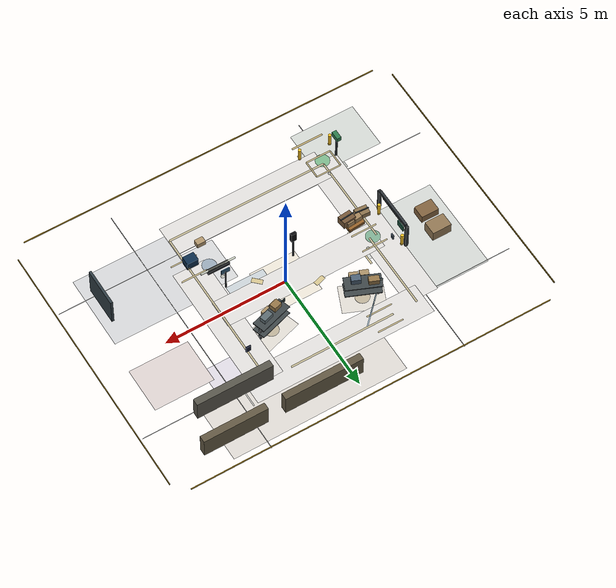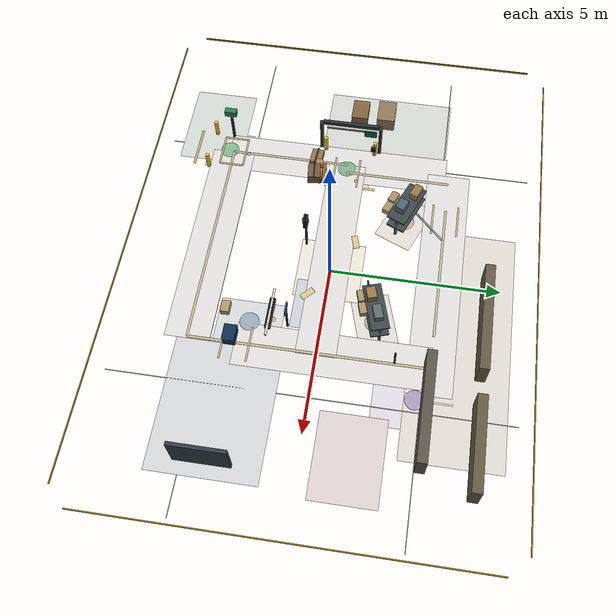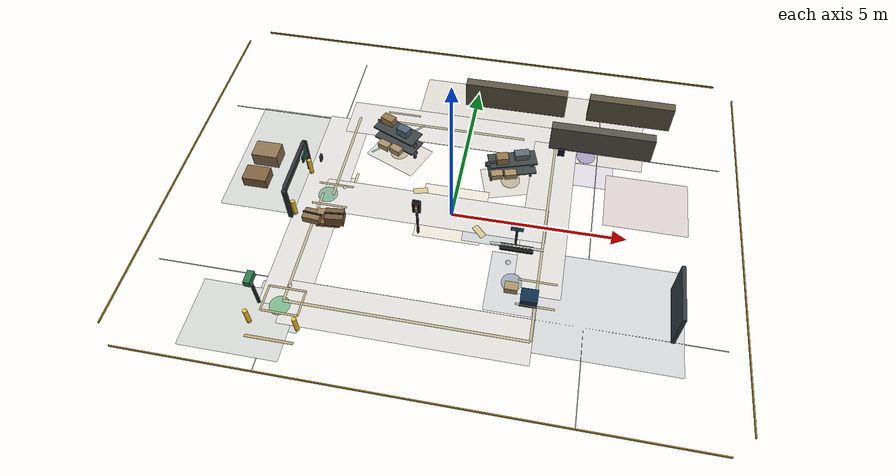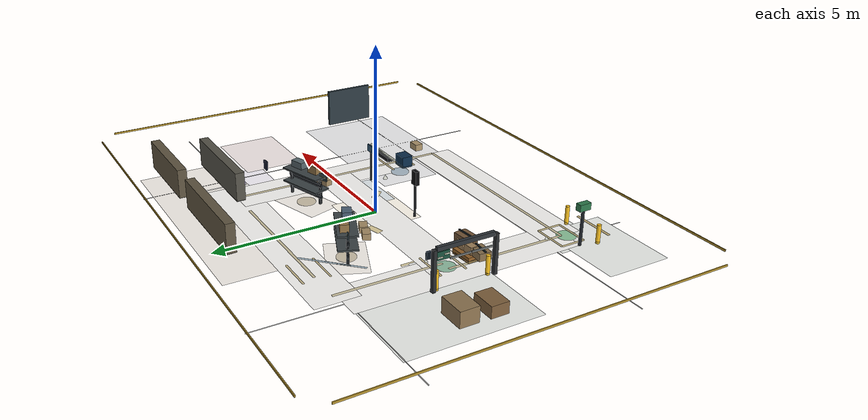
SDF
<sdf version="1.9">
 <world name="factory_patrol">
  <model name="showcase_large_factory_layout">
   <static>true</static>
   <pose>0 0 0.052 0 0 0</pose>
   <link name="link">
    <visual name="receiving_area_large">
     <pose>-5.35 1.10 0 0 0 0</pose>
     <geometry><box><size>2.70 3.90 0.012</size></box></geometry>
     <material><diffuse>0.25 0.34 0.30 0.16</diffuse><ambient>0.25 0.34 0.30 0.16</ambient></material>
    </visual>
    <visual name="storage_area_large">
     <pose>1.80 3.95 0.002 0 0 0</pose>
     <geometry><box><size>7.10 2.80 0.012</size></box></geometry>
     <material><diffuse>0.45 0.40 0.30 0.15</diffuse><ambient>0.45 0.40 0.30 0.15</ambient></material>
    </visual>
    <visual name="packing_area_large">
     <pose>4.65 -2.40 0.004 0 0 0</pose>
     <geometry><box><size>3.80 3.05 0.012</size></box></geometry>
     <material><diffuse>0.27 0.33 0.39 0.16</diffuse><ambient>0.27 0.33 0.39 0.16</ambient></material>
    </visual>
    <visual name="dock_area_large">
     <pose>-4.80 -4.35 0.006 0 0 0</pose>
     <geometry><box><size>2.70 1.95 0.012</size></box></geometry>
     <material><diffuse>0.25 0.36 0.30 0.18</diffuse><ambient>0.25 0.36 0.30 0.18</ambient></material>
    </visual>
    <visual name="restricted_service_area_large">
     <pose>5.50 1.30 0.008 0 0 0</pose>
     <geometry><box><size>2.40 1.85 0.012</size></box></geometry>
     <material><diffuse>0.42 0.25 0.25 0.13</diffuse><ambient>0.42 0.25 0.25 0.13</ambient></material>
    </visual>
    <visual name="aisle_left_band">
     <pose>-3.85 -0.35 0.010 0 0 1.5708</pose>
     <geometry><box><size>6.90 1.30 0.010</size></box></geometry>
     <material><diffuse>0.50 0.51 0.48 0.13</diffuse><ambient>0.50 0.51 0.48 0.13</ambient></material>
    </visual>
    <visual name="aisle_back_band">
     <pose>-0.20 3.20 0.012 0 0 0</pose>
     <geometry><box><size>7.35 1.30 0.010</size></box></geometry>
     <material><diffuse>0.50 0.51 0.48 0.13</diffuse><ambient>0.50 0.51 0.48 0.13</ambient></material>
    </visual>
    <visual name="aisle_right_drop_band">
     <pose>2.70 0.45 0.014 0 0 1.5708</pose>
     <geometry><box><size>5.50 1.30 0.010</size></box></geometry>
     <material><diffuse>0.50 0.51 0.48 0.13</diffuse><ambient>0.50 0.51 0.48 0.13</ambient></material>
    </visual>
    <visual name="aisle_return_band">
     <pose>-0.55 -3.65 0.016 0 0 0</pose>
     <geometry><box><size>6.60 1.30 0.010</size></box></geometry>
     <material><diffuse>0.50 0.51 0.48 0.13</diffuse><ambient>0.50 0.51 0.48 0.13</ambient></material>
    </visual>
    <visual name="aisle_center_cross_band">
     <pose>-0.55 0.00 0.018 0 0 0</pose>
     <geometry><box><size>6.60 1.15 0.010</size></box></geometry>
     <material><diffuse>0.50 0.51 0.48 0.10</diffuse><ambient>0.50 0.51 0.48 0.10</ambient></material>
    </visual>
    <visual name="route_dock_to_receiving">
     <pose>-3.85 -1.82 0.026 0 0 1.5708</pose>
     <geometry><box><size>3.66 0.070 0.018</size></box></geometry>
     <material><diffuse>0.66 0.60 0.38 0.62</diffuse><emissive>0.06 0.04 0.00 1</emissive></material>
    </visual>
    <visual name="route_receiving_to_back">
     <pose>-3.55 1.60 0.028 0 0 1.5708</pose>
     <geometry><box><size>3.20 0.070 0.018</size></box></geometry>
     <material><diffuse>0.66 0.60 0.38 0.62</diffuse><emissive>0.06 0.04 0.00 1</emissive></material>
    </visual>
    <visual name="route_back_storage">
     <pose>-0.42 3.20 0.030 0 0 0</pose>
     <geometry><box><size>4.26 0.070 0.018</size></box></geometry>
     <material><diffuse>0.66 0.60 0.38 0.62</diffuse><emissive>0.06 0.04 0.00 1</emissive></material>
    </visual>
    <visual name="route_storage_to_packing">
     <pose>2.70 0.48 0.032 0 0 1.5708</pose>
     <geometry><box><size>5.44 0.070 0.018</size></box></geometry>
     <material><diffuse>0.66 0.60 0.38 0.62</diffuse><emissive>0.06 0.04 0.00 1</emissive></material>
    </visual>
    <visual name="route_packing_to_return">
     <pose>2.70 -2.95 0.034 0 0 1.5708</pose>
     <geometry><box><size>1.40 0.070 0.018</size></box></geometry>
     <material><diffuse>0.66 0.60 0.38 0.62</diffuse><emissive>0.06 0.04 0.00 1</emissive></material>
    </visual>
    <visual name="route_return_to_dock">
     <pose>-0.58 -3.65 0.036 0 0 0</pose>
     <geometry><box><size>6.55 0.070 0.018</size></box></geometry>
     <material><diffuse>0.66 0.60 0.38 0.62</diffuse><emissive>0.06 0.04 0.00 1</emissive></material>
    </visual>
    <visual name="station_frame_dock_n">
     <pose>-3.85 -3.28 0.040 0 0 0</pose>
     <geometry><box><size>1.02 0.050 0.018</size></box></geometry>
     <material><diffuse>0.73 0.65 0.40 0.76</diffuse></material>
    </visual>
    <visual name="station_frame_dock_s">
     <pose>-3.85 -4.02 0.040 0 0 0</pose>
     <geometry><box><size>1.02 0.050 0.018</size></box></geometry>
     <material><diffuse>0.73 0.65 0.40 0.76</diffuse></material>
    </visual>
    <visual name="station_frame_dock_e">
     <pose>-3.34 -3.65 0.040 0 0 1.5708</pose>
     <geometry><box><size>0.74 0.050 0.018</size></box></geometry>
     <material><diffuse>0.73 0.65 0.40 0.76</diffuse></material>
    </visual>
    <visual name="station_frame_dock_w">
     <pose>-4.36 -3.65 0.040 0 0 1.5708</pose>
     <geometry><box><size>0.74 0.050 0.018</size></box></geometry>
     <material><diffuse>0.73 0.65 0.40 0.76</diffuse></material>
    </visual>
    <visual name="station_frame_receiving_n">
     <pose>-3.55 0.38 0.040 0 0 0</pose>
     <geometry><box><size>1.05 0.050 0.018</size></box></geometry>
     <material><diffuse>0.73 0.65 0.40 0.72</diffuse></material>
    </visual>
    <visual name="station_frame_receiving_s">
     <pose>-3.55 -0.38 0.040 0 0 0</pose>
     <geometry><box><size>1.05 0.050 0.018</size></box></geometry>
     <material><diffuse>0.73 0.65 0.40 0.72</diffuse></material>
    </visual>
    <visual name="station_frame_storage_n">
     <pose>-2.20 3.58 0.040 0 0 0</pose>
     <geometry><box><size>1.05 0.050 0.018</size></box></geometry>
     <material><diffuse>0.73 0.65 0.40 0.72</diffuse></material>
    </visual>
    <visual name="station_frame_storage_s">
     <pose>-2.20 2.82 0.040 0 0 0</pose>
     <geometry><box><size>1.05 0.050 0.018</size></box></geometry>
     <material><diffuse>0.73 0.65 0.40 0.72</diffuse></material>
    </visual>
    <visual name="station_frame_packing_n">
     <pose>2.70 -1.87 0.040 0 0 0</pose>
     <geometry><box><size>1.05 0.050 0.018</size></box></geometry>
     <material><diffuse>0.73 0.65 0.40 0.72</diffuse></material>
    </visual>
    <visual name="station_frame_packing_s">
     <pose>2.70 -2.63 0.040 0 0 0</pose>
     <geometry><box><size>1.05 0.050 0.018</size></box></geometry>
     <material><diffuse>0.73 0.65 0.40 0.72</diffuse></material>
    </visual>
    <visual name="slow_zone_large_hatch_1">
     <pose>-2.45 2.20 0.048 0 0 0.7854</pose>
     <geometry><box><size>1.05 0.045 0.018</size></box></geometry>
     <material><diffuse>0.24 0.44 0.56 0.48</diffuse></material>
    </visual>
    <visual name="slow_zone_large_hatch_2">
     <pose>-2.15 2.50 0.048 0 0 0.7854</pose>
     <geometry><box><size>1.05 0.045 0.018</size></box></geometry>
     <material><diffuse>0.24 0.44 0.56 0.48</diffuse></material>
    </visual>
    <visual name="slow_zone_large_hatch_3">
     <pose>-1.85 2.80 0.048 0 0 0.7854</pose>
     <geometry><box><size>1.05 0.045 0.018</size></box></geometry>
     <material><diffuse>0.24 0.44 0.56 0.48</diffuse></material>
    </visual>
    <visual name="storage_showcase_rack_a">
     <pose>1.25 4.55 0.45 0 0 0</pose>
     <geometry><box><size>3.20 0.28 0.90</size></box></geometry>
     <material><diffuse>0.38 0.34 0.26 1</diffuse></material>
    </visual>
    <visual name="storage_showcase_rack_b">
     <pose>4.85 4.55 0.45 0 0 0</pose>
     <geometry><box><size>2.60 0.28 0.90</size></box></geometry>
     <material><diffuse>0.38 0.34 0.26 1</diffuse></material>
    </visual>
    <visual name="storage_showcase_rack_c">
     <pose>4.05 3.15 0.45 0 0 0</pose>
     <geometry><box><size>3.10 0.28 0.90</size></box></geometry>
     <material><diffuse>0.34 0.33 0.29 1</diffuse></material>
    </visual>
    <visual name="receiving_inbound_buffer_1">
     <pose>-5.90 0.15 0.18 0 0 0</pose>
     <geometry><box><size>0.72 0.52 0.34</size></box></geometry>
     <material><diffuse>0.50 0.38 0.24 1</diffuse></material>
    </visual>
    <visual name="receiving_inbound_buffer_2">
     <pose>-5.85 1.00 0.24 0 0 0</pose>
     <geometry><box><size>0.78 0.56 0.46</size></box></geometry>
     <material><diffuse>0.56 0.46 0.32 1</diffuse></material>
    </visual>
    <visual name="packing_showcase_toolwall">
     <pose>6.20 -2.38 0.85 0 0 0</pose>
     <geometry><box><size>0.10 1.55 1.20</size></box></geometry>
     <material><diffuse>0.18 0.23 0.26 1</diffuse></material>
    </visual>
    <visual name="dock_approach_stop_bar">
     <pose>-3.85 -4.80 0.052 0 0 0</pose>
     <geometry><box><size>1.30 0.070 0.018</size></box></geometry>
     <material><diffuse>0.72 0.62 0.34 0.78</diffuse></material>
    </visual>
   </link>
  </model>
  <model name="showcase_rack_and_workcell_detail">
   <static>true</static>
   <link name="link">
    <visual name="rack_a_top_beam">
     <pose>1.50 1.50 0.78 0 0 0.30</pose>
     <geometry><box><size>1.34 0.06 0.08</size></box></geometry>
     <material><diffuse>0.10 0.12 0.14 1</diffuse></material>
    </visual>
    <visual name="rack_a_bottom_beam">
     <pose>1.50 1.50 0.42 0 0 0.30</pose>
     <geometry><box><size>1.34 0.06 0.08</size></box></geometry>
     <material><diffuse>0.10 0.12 0.14 1</diffuse></material>
    </visual>
    <visual name="rack_a_post_1">
     <pose>0.94 1.31 0.55 0 0 0.30</pose>
     <geometry><box><size>0.07 0.07 0.72</size></box></geometry>
     <material><diffuse>0.08 0.09 0.10 1</diffuse></material>
    </visual>
    <visual name="rack_a_post_2">
     <pose>2.06 1.69 0.55 0 0 0.30</pose>
     <geometry><box><size>0.07 0.07 0.72</size></box></geometry>
     <material><diffuse>0.08 0.09 0.10 1</diffuse></material>
    </visual>
    <visual name="rack_b_top_beam">
     <pose>-2.00 2.00 0.78 0 0 -0.40</pose>
     <geometry><box><size>1.34 0.06 0.08</size></box></geometry>
     <material><diffuse>0.10 0.12 0.14 1</diffuse></material>
    </visual>
    <visual name="rack_b_bottom_beam">
     <pose>-2.00 2.00 0.42 0 0 -0.40</pose>
     <geometry><box><size>1.34 0.06 0.08</size></box></geometry>
     <material><diffuse>0.10 0.12 0.14 1</diffuse></material>
    </visual>
    <visual name="rack_b_post_1">
     <pose>-2.54 2.24 0.55 0 0 -0.40</pose>
     <geometry><box><size>0.07 0.07 0.72</size></box></geometry>
     <material><diffuse>0.08 0.09 0.10 1</diffuse></material>
    </visual>
    <visual name="rack_b_post_2">
     <pose>-1.46 1.76 0.55 0 0 -0.40</pose>
     <geometry><box><size>0.07 0.07 0.72</size></box></geometry>
     <material><diffuse>0.08 0.09 0.10 1</diffuse></material>
    </visual>
    <visual name="packing_conveyor">
     <pose>2.00 -1.36 0.78 0 0 0</pose>
     <geometry><box><size>0.90 0.16 0.12</size></box></geometry>
     <material><diffuse>0.07 0.08 0.09 1</diffuse></material>
    </visual>
    <visual name="packing_roller_1">
     <pose>1.70 -1.36 0.87 0 1.5708 0</pose>
     <geometry><cylinder><radius>0.035</radius><length>0.82</length></cylinder></geometry>
     <material><diffuse>0.80 0.82 0.76 1</diffuse></material>
    </visual>
    <visual name="packing_roller_2">
     <pose>2.00 -1.36 0.87 0 1.5708 0</pose>
     <geometry><cylinder><radius>0.035</radius><length>0.82</length></cylinder></geometry>
     <material><diffuse>0.80 0.82 0.76 1</diffuse></material>
    </visual>
    <visual name="packing_roller_3">
     <pose>2.30 -1.36 0.87 0 1.5708 0</pose>
     <geometry><cylinder><radius>0.035</radius><length>0.82</length></cylinder></geometry>
     <material><diffuse>0.80 0.82 0.76 1</diffuse></material>
    </visual>
   </link>
  </model>
  <model name="showcase_zone_floor">
   <static>true</static>
   <pose>0 0 0.035 0 0 0</pose>
   <link name="link">
    <visual name="receiving_zone">
     <pose>-3.70 0.00 0 0 0 0</pose>
     <geometry><box><size>1.25 1.50 0.012</size></box></geometry>
     <material><diffuse>0.28 0.36 0.32 0.20</diffuse><ambient>0.28 0.36 0.32 0.20</ambient></material>
    </visual>
    <visual name="storage_a_zone">
     <pose>1.50 1.50 0 0 0 0.30</pose>
     <geometry><box><size>1.65 1.10 0.012</size></box></geometry>
     <material><diffuse>0.48 0.43 0.32 0.20</diffuse><ambient>0.48 0.43 0.32 0.20</ambient></material>
    </visual>
    <visual name="storage_b_zone">
     <pose>-2.00 2.00 0 0 0 -0.40</pose>
     <geometry><box><size>1.65 1.15 0.012</size></box></geometry>
     <material><diffuse>0.48 0.43 0.32 0.20</diffuse><ambient>0.48 0.43 0.32 0.20</ambient></material>
    </visual>
    <visual name="packing_zone">
     <pose>2.00 -2.00 0 0 0 0</pose>
     <geometry><box><size>1.30 1.85 0.012</size></box></geometry>
     <material><diffuse>0.30 0.36 0.42 0.20</diffuse><ambient>0.30 0.36 0.42 0.20</ambient></material>
    </visual>
    <visual name="dock_zone">
     <pose>-3.90 -3.80 0 0 0 0</pose>
     <geometry><box><size>1.35 1.35 0.012</size></box></geometry>
     <material><diffuse>0.28 0.38 0.32 0.22</diffuse><ambient>0.28 0.38 0.32 0.22</ambient></material>
    </visual>
    <visual name="elevator_zone">
     <pose>3.65 2.85 0 0 0 0</pose>
     <geometry><box><size>1.70 2.30 0.012</size></box></geometry>
     <material><diffuse>0.46 0.42 0.62 0.15</diffuse><ambient>0.46 0.42 0.62 0.15</ambient></material>
    </visual>
    <visual name="traffic_control_zone">
     <pose>0.00 0.00 0.006 0 0 0</pose>
     <geometry><box><size>1.90 1.90 0.012</size></box></geometry>
     <material><diffuse>0.72 0.64 0.40 0.14</diffuse><ambient>0.72 0.64 0.40 0.14</ambient></material>
    </visual>
    <visual name="slow_zone_overlay">
     <pose>1.20 -0.25 0.012 0 0 0</pose>
     <geometry><box><size>1.55 1.25 0.012</size></box></geometry>
     <material><diffuse>0.22 0.38 0.48 0.24</diffuse><ambient>0.22 0.38 0.48 0.24</ambient></material>
    </visual>
   </link>
  </model>
  <model name="showcase_floor_finish">
   <static>true</static>
   <pose>0 0 0.057 0 0 0</pose>
   <link name="link">
    <visual name="floor_joint_x_neg">
     <pose>-4.00 0 0 0 0 0</pose>
     <geometry><box><size>0.018 11.30 0.010</size></box></geometry>
     <material><diffuse>0.28 0.29 0.28 0.42</diffuse><ambient>0.28 0.29 0.28 0.42</ambient></material>
    </visual>
    <visual name="floor_joint_x_pos">
     <pose>4.00 0 0 0 0 0</pose>
     <geometry><box><size>0.018 11.30 0.010</size></box></geometry>
     <material><diffuse>0.28 0.29 0.28 0.42</diffuse><ambient>0.28 0.29 0.28 0.42</ambient></material>
    </visual>
    <visual name="floor_joint_y_neg">
     <pose>0 -3.00 0 0 0 0</pose>
     <geometry><box><size>15.30 0.018 0.010</size></box></geometry>
     <material><diffuse>0.28 0.29 0.28 0.42</diffuse><ambient>0.28 0.29 0.28 0.42</ambient></material>
    </visual>
    <visual name="floor_joint_y_pos">
     <pose>0 3.00 0 0 0 0</pose>
     <geometry><box><size>15.30 0.018 0.010</size></box></geometry>
     <material><diffuse>0.28 0.29 0.28 0.42</diffuse><ambient>0.28 0.29 0.28 0.42</ambient></material>
    </visual>
    <visual name="floor_tire_scuff_main_1">
     <pose>-0.55 -0.18 0.004 0 0 -0.01</pose>
     <geometry><box><size>6.80 0.035 0.010</size></box></geometry>
     <material><diffuse>0.22 0.23 0.22 0.26</diffuse><ambient>0.22 0.23 0.22 0.26</ambient></material>
    </visual>
    <visual name="floor_tire_scuff_main_2">
     <pose>-0.42 0.20 0.004 0 0 -0.01</pose>
     <geometry><box><size>6.40 0.028 0.010</size></box></geometry>
     <material><diffuse>0.22 0.23 0.22 0.22</diffuse><ambient>0.22 0.23 0.22 0.22</ambient></material>
    </visual>
    <visual name="floor_tire_scuff_dock_1">
     <pose>-3.88 -2.10 0.004 0 0 1.5708</pose>
     <geometry><box><size>3.20 0.030 0.010</size></box></geometry>
     <material><diffuse>0.22 0.23 0.22 0.24</diffuse><ambient>0.22 0.23 0.22 0.24</ambient></material>
    </visual>
    <visual name="floor_tire_scuff_packing_1">
     <pose>2.70 -1.60 0.004 0 0 -1.5708</pose>
     <geometry><box><size>3.20 0.025 0.010</size></box></geometry>
     <material><diffuse>0.22 0.23 0.22 0.22</diffuse><ambient>0.22 0.23 0.22 0.22</ambient></material>
    </visual>
   </link>
  </model>
  <model name="showcase_lane_markers">
   <static>true</static>
   <pose>0 0 0.055 0 0 0</pose>
   <link name="link">
    <visual name="lane_dock_receiving">
     <pose>-3.90 -1.84 0 0 0 1.5708</pose>
     <geometry><box><size>3.62 0.045 0.018</size></box></geometry>
     <material><diffuse>0.60 0.62 0.58 0.20</diffuse><emissive>0.03 0.03 0.03 1</emissive></material>
    </visual>
    <visual name="lane_receiving_storage_a">
     <pose>-3.55 1.60 0 0 0 1.5708</pose>
     <geometry><box><size>3.20 0.045 0.018</size></box></geometry>
     <material><diffuse>0.60 0.62 0.58 0.18</diffuse><emissive>0.03 0.03 0.03 1</emissive></material>
    </visual>
    <visual name="lane_receiving_storage_b">
     <pose>-2.85 3.20 0 0 0 0</pose>
     <geometry><box><size>1.40 0.045 0.018</size></box></geometry>
     <material><diffuse>0.60 0.62 0.58 0.18</diffuse><emissive>0.03 0.03 0.03 1</emissive></material>
    </visual>
    <visual name="lane_storage_a_packing">
     <pose>0.25 3.20 0 0 0 0</pose>
     <geometry><box><size>4.90 0.045 0.018</size></box></geometry>
     <material><diffuse>0.60 0.62 0.58 0.18</diffuse><emissive>0.03 0.03 0.03 1</emissive></material>
    </visual>
    <visual name="lane_storage_b_packing">
     <pose>2.70 0.48 0.004 0 0 1.5708</pose>
     <geometry><box><size>5.44 0.045 0.018</size></box></geometry>
     <material><diffuse>0.60 0.62 0.58 0.18</diffuse><emissive>0.03 0.03 0.03 1</emissive></material>
    </visual>
    <visual name="lane_packing_dock">
     <pose>-0.58 -3.65 0 0 0 0</pose>
     <geometry><box><size>6.55 0.045 0.018</size></box></geometry>
     <material><diffuse>0.60 0.62 0.58 0.18</diffuse><emissive>0.03 0.03 0.03 1</emissive></material>
    </visual>
    <visual name="lane_packing_lift">
     <pose>2.70 -2.95 0 0 0 1.5708</pose>
     <geometry><box><size>1.40 0.045 0.018</size></box></geometry>
     <material><diffuse>0.60 0.62 0.58 0.18</diffuse><emissive>0.03 0.03 0.03 1</emissive></material>
    </visual>
    <visual name="lane_lift_floor2">
     <pose>3.65 3.35 0 0 0 1.5708</pose>
     <geometry><box><size>1.05 0.045 0.018</size></box></geometry>
     <material><diffuse>0.60 0.62 0.58 0.16</diffuse><emissive>0.02 0.02 0.02 1</emissive></material>
    </visual>
    <visual name="arrow_receiving">
     <pose>-3.28 0.34 0.020 0 0 0.78</pose>
     <geometry><cone><radius>0.11</radius><length>0.18</length></cone></geometry>
     <material><diffuse>0.64 0.66 0.60 0.55</diffuse><emissive>0.08 0.08 0.06 1</emissive></material>
    </visual>
    <visual name="arrow_packing">
     <pose>1.82 -1.36 0.020 0 0 -1.2</pose>
     <geometry><cone><radius>0.11</radius><length>0.18</length></cone></geometry>
     <material><diffuse>0.64 0.66 0.60 0.55</diffuse><emissive>0.08 0.08 0.06 1</emissive></material>
    </visual>
    <visual name="arrow_dock">
     <pose>-3.82 -3.18 0.020 0 0 -1.57</pose>
     <geometry><cone><radius>0.11</radius><length>0.18</length></cone></geometry>
     <material><diffuse>0.64 0.66 0.60 0.55</diffuse><emissive>0.08 0.08 0.06 1</emissive></material>
    </visual>
   </link>
  </model>
  <model name="showcase_station_pads">
   <static>true</static>
   <pose>0 0 0.070 0 0 0</pose>
   <link name="link">
    <visual name="pad_receiving">
     <pose>-3.70 0.00 0 0 0 0</pose>
     <geometry><cylinder><radius>0.28</radius><length>0.026</length></cylinder></geometry>
     <material><diffuse>0.20 0.52 0.34 0.58</diffuse><emissive>0.00 0.07 0.03 1</emissive></material>
    </visual>
    <visual name="pad_storage_a">
     <pose>1.50 1.50 0 0 0 0</pose>
     <geometry><cylinder><radius>0.28</radius><length>0.026</length></cylinder></geometry>
     <material><diffuse>0.54 0.46 0.28 0.50</diffuse><emissive>0.06 0.03 0.00 1</emissive></material>
    </visual>
    <visual name="pad_storage_b">
     <pose>-2.00 2.00 0 0 0 0</pose>
     <geometry><cylinder><radius>0.28</radius><length>0.026</length></cylinder></geometry>
     <material><diffuse>0.54 0.46 0.28 0.50</diffuse><emissive>0.06 0.03 0.00 1</emissive></material>
    </visual>
    <visual name="pad_packing">
     <pose>2.00 -2.00 0 0 0 0</pose>
     <geometry><cylinder><radius>0.28</radius><length>0.026</length></cylinder></geometry>
     <material><diffuse>0.26 0.40 0.52 0.50</diffuse><emissive>0.00 0.04 0.08 1</emissive></material>
    </visual>
    <visual name="pad_dock">
     <pose>-3.90 -3.80 0 0 0 0</pose>
     <geometry><cylinder><radius>0.28</radius><length>0.026</length></cylinder></geometry>
     <material><diffuse>0.18 0.58 0.30 0.58</diffuse><emissive>0.00 0.08 0.02 1</emissive></material>
    </visual>
    <visual name="pad_lift">
     <pose>3.65 2.85 0 0 0 0</pose>
     <geometry><cylinder><radius>0.28</radius><length>0.026</length></cylinder></geometry>
     <material><diffuse>0.42 0.36 0.60 0.55</diffuse><emissive>0.03 0.02 0.08 1</emissive></material>
    </visual>
    <visual name="wait_point_1">
     <pose>-1.05 0.62 0.012 0 0 0.28</pose>
     <geometry><box><size>0.42 0.18 0.026</size></box></geometry>
     <material><diffuse>0.78 0.68 0.34 0.60</diffuse><emissive>0.28 0.20 0.00 1</emissive></material>
    </visual>
    <visual name="wait_point_2">
     <pose>0.88 -0.52 0.012 0 0 -0.78</pose>
     <geometry><box><size>0.42 0.18 0.026</size></box></geometry>
     <material><diffuse>0.78 0.68 0.34 0.60</diffuse><emissive>0.28 0.20 0.00 1</emissive></material>
    </visual>
   </link>
  </model>
  <model name="showcase_pallets_and_totes">
   <static>true</static>
   <link name="link">
    <visual name="receiving_pallet">
     <pose>-3.42 -0.86 0.08 0 0 0.08</pose>
     <geometry><box><size>0.68 0.46 0.16</size></box></geometry>
     <material><diffuse>0.58 0.38 0.16 1</diffuse></material>
    </visual>
    <visual name="receiving_tote_1">
     <pose>-3.56 -0.86 0.30 0 0 0.08</pose>
     <geometry><box><size>0.30 0.22 0.22</size></box></geometry>
     <material><diffuse>0.64 0.52 0.36 1</diffuse></material>
    </visual>
    <visual name="receiving_tote_2">
     <pose>-3.22 -0.83 0.30 0 0 0.08</pose>
     <geometry><box><size>0.30 0.22 0.22</size></box></geometry>
     <material><diffuse>0.64 0.52 0.36 1</diffuse></material>
    </visual>
    <visual name="storage_a_tote_1">
     <pose>1.12 1.06 0.78 0 0 0.30</pose>
     <geometry><box><size>0.34 0.22 0.18</size></box></geometry>
     <material><diffuse>0.66 0.56 0.40 1</diffuse></material>
    </visual>
    <visual name="storage_a_tote_2">
     <pose>1.50 1.15 0.78 0 0 0.30</pose>
     <geometry><box><size>0.34 0.22 0.18</size></box></geometry>
     <material><diffuse>0.66 0.56 0.40 1</diffuse></material>
    </visual>
    <visual name="storage_b_tote_1">
     <pose>-2.32 1.58 0.78 0 0 -0.40</pose>
     <geometry><box><size>0.34 0.22 0.18</size></box></geometry>
     <material><diffuse>0.66 0.56 0.40 1</diffuse></material>
    </visual>
    <visual name="storage_b_tote_2">
     <pose>-1.94 1.46 0.78 0 0 -0.40</pose>
     <geometry><box><size>0.34 0.22 0.18</size></box></geometry>
     <material><diffuse>0.66 0.56 0.40 1</diffuse></material>
    </visual>
    <visual name="packing_bin">
     <pose>2.52 -2.45 0.18 0 0 0</pose>
     <geometry><box><size>0.46 0.36 0.36</size></box></geometry>
     <material><diffuse>0.05 0.18 0.30 1</diffuse></material>
    </visual>
    <visual name="packing_ready_tote">
     <pose>2.02 -2.60 0.82 0 0 0</pose>
     <geometry><box><size>0.34 0.24 0.20</size></box></geometry>
     <material><diffuse>0.68 0.58 0.42 1</diffuse></material>
    </visual>
   </link>
  </model>
  <model name="showcase_environment_polish">
   <static>true</static>
   <link name="link">
    <visual name="north_wall_safety_stripe">
     <pose>0 5.935 0.72 0 0 0</pose>
     <geometry><box><size>14.80 0.026 0.055</size></box></geometry>
     <material><diffuse>0.72 0.58 0.18 1</diffuse><emissive>0.06 0.04 0.00 1</emissive></material>
    </visual>
    <visual name="south_wall_safety_stripe">
     <pose>0 -5.935 0.72 0 0 0</pose>
     <geometry><box><size>14.80 0.026 0.055</size></box></geometry>
     <material><diffuse>0.72 0.58 0.18 1</diffuse><emissive>0.06 0.04 0.00 1</emissive></material>
    </visual>
    <visual name="east_wall_safety_stripe">
     <pose>7.935 0 0.72 0 0 0</pose>
     <geometry><box><size>0.026 10.80 0.055</size></box></geometry>
     <material><diffuse>0.72 0.58 0.18 1</diffuse><emissive>0.06 0.04 0.00 1</emissive></material>
    </visual>
    <visual name="west_wall_safety_stripe">
     <pose>-7.935 0 0.72 0 0 0</pose>
     <geometry><box><size>0.026 10.80 0.055</size></box></geometry>
     <material><diffuse>0.72 0.58 0.18 1</diffuse><emissive>0.06 0.04 0.00 1</emissive></material>
    </visual>
    <visual name="dock_charge_mast">
     <pose>-4.48 -3.78 0.62 0 0 0</pose>
     <geometry><cylinder><radius>0.045</radius><length>1.12</length></cylinder></geometry>
     <material><diffuse>0.10 0.12 0.14 1</diffuse></material>
    </visual>
    <visual name="dock_charge_panel">
     <pose>-4.48 -3.78 1.22 0 0 0</pose>
     <geometry><box><size>0.18 0.36 0.20</size></box></geometry>
     <material><diffuse>0.18 0.48 0.30 0.95</diffuse><emissive>0.00 0.08 0.02 1</emissive></material>
    </visual>
    <visual name="door_keypad">
     <pose>-4.04 0.76 0.78 0 0 0</pose>
     <geometry><box><size>0.05 0.14 0.22</size></box></geometry>
     <material><diffuse>0.02 0.06 0.10 1</diffuse><emissive>0.00 0.18 0.28 1</emissive></material>
    </visual>
    <visual name="elevator_call_panel">
     <pose>2.86 2.18 0.86 0 0 0</pose>
     <geometry><box><size>0.20 0.05 0.28</size></box></geometry>
     <material><diffuse>0.06 0.08 0.16 1</diffuse><emissive>0.18 0.12 0.42 1</emissive></material>
    </visual>
    <visual name="traffic_light_pole">
     <pose>-0.82 -0.82 0.62 0 0 0</pose>
     <geometry><cylinder><radius>0.035</radius><length>1.18</length></cylinder></geometry>
     <material><diffuse>0.08 0.09 0.10 1</diffuse></material>
    </visual>
    <visual name="traffic_light_housing">
     <pose>-0.82 -0.82 1.25 0 0 0</pose>
     <geometry><box><size>0.22 0.12 0.42</size></box></geometry>
     <material><diffuse>0.04 0.04 0.05 1</diffuse></material>
    </visual>
    <visual name="traffic_light_red">
     <pose>-0.82 -0.88 1.36 0 0 0</pose>
     <geometry><sphere><radius>0.042</radius></sphere></geometry>
     <material><diffuse>0.70 0.08 0.06 1</diffuse><emissive>0.12 0.00 0.00 1</emissive></material>
    </visual>
    <visual name="traffic_light_yellow">
     <pose>-0.82 -0.88 1.25 0 0 0</pose>
     <geometry><sphere><radius>0.042</radius></sphere></geometry>
     <material><diffuse>0.78 0.58 0.12 1</diffuse><emissive>0.10 0.06 0.00 1</emissive></material>
    </visual>
    <visual name="traffic_light_green">
     <pose>-0.82 -0.88 1.14 0 0 0</pose>
     <geometry><sphere><radius>0.042</radius></sphere></geometry>
     <material><diffuse>0.16 0.58 0.28 1</diffuse><emissive>0.00 0.08 0.02 1</emissive></material>
    </visual>
    <visual name="speed_sign_pole">
     <pose>1.95 -0.92 0.55 0 0 0</pose>
     <geometry><cylinder><radius>0.032</radius><length>1.02</length></cylinder></geometry>
     <material><diffuse>0.08 0.09 0.10 1</diffuse></material>
    </visual>
    <visual name="speed_sign_panel">
     <pose>1.95 -0.92 1.08 0 0 0</pose>
     <geometry><box><size>0.34 0.035 0.22</size></box></geometry>
     <material><diffuse>0.18 0.34 0.46 0.96</diffuse><emissive>0.00 0.04 0.06 1</emissive></material>
    </visual>
    <visual name="receiving_bollard_1">
     <pose>-4.45 -0.78 0.28 0 0 0</pose>
     <geometry><cylinder><radius>0.06</radius><length>0.56</length></cylinder></geometry>
     <material><diffuse>0.98 0.76 0.12 1</diffuse><emissive>0.18 0.10 0.00 1</emissive></material>
    </visual>
    <visual name="receiving_bollard_2">
     <pose>-4.45 0.78 0.28 0 0 0</pose>
     <geometry><cylinder><radius>0.06</radius><length>0.56</length></cylinder></geometry>
     <material><diffuse>0.98 0.76 0.12 1</diffuse><emissive>0.18 0.10 0.00 1</emissive></material>
    </visual>
    <visual name="dock_bollard_1">
     <pose>-4.55 -4.35 0.28 0 0 0</pose>
     <geometry><cylinder><radius>0.06</radius><length>0.56</length></cylinder></geometry>
     <material><diffuse>0.98 0.76 0.12 1</diffuse><emissive>0.18 0.10 0.00 1</emissive></material>
    </visual>
    <visual name="dock_bollard_2">
     <pose>-3.25 -4.35 0.28 0 0 0</pose>
     <geometry><cylinder><radius>0.06</radius><length>0.56</length></cylinder></geometry>
     <material><diffuse>0.98 0.76 0.12 1</diffuse><emissive>0.18 0.10 0.00 1</emissive></material>
    </visual>
   </link>
  </model>
  <model name="showcase_receiving_inbound_detail">
   <static>true</static>
   <link name="link">
    <visual name="receiving_rollup_header">
     <pose>-4.54 0.00 1.22 0 0 0</pose>
     <geometry><box><size>0.10 1.72 0.12</size></box></geometry>
     <material><diffuse>0.18 0.20 0.22 1</diffuse></material>
    </visual>
    <visual name="receiving_rollup_left_post">
     <pose>-4.54 -0.92 0.62 0 0 0</pose>
     <geometry><box><size>0.12 0.10 1.18</size></box></geometry>
     <material><diffuse>0.16 0.17 0.18 1</diffuse></material>
    </visual>
    <visual name="receiving_rollup_right_post">
     <pose>-4.54 0.92 0.62 0 0 0</pose>
     <geometry><box><size>0.12 0.10 1.18</size></box></geometry>
     <material><diffuse>0.16 0.17 0.18 1</diffuse></material>
    </visual>
    <visual name="receiving_door_slat_1">
     <pose>-4.60 -0.46 0.90 0 0 0</pose>
     <geometry><box><size>0.035 0.62 0.045</size></box></geometry>
     <material><diffuse>0.48 0.50 0.50 1</diffuse></material>
    </visual>
    <visual name="receiving_door_slat_2">
     <pose>-4.60 0.18 0.90 0 0 0</pose>
     <geometry><box><size>0.035 0.62 0.045</size></box></geometry>
     <material><diffuse>0.48 0.50 0.50 1</diffuse></material>
    </visual>
    <visual name="receiving_buffer_floor_lane">
     <pose>-3.62 -0.58 0.030 0 0 0</pose>
     <geometry><box><size>1.22 0.09 0.018</size></box></geometry>
     <material><diffuse>0.78 0.72 0.52 0.58</diffuse><emissive>0.08 0.06 0.00 1</emissive></material>
    </visual>
    <visual name="receiving_buffer_floor_stop">
     <pose>-3.05 0.52 0.031 0 0 1.5708</pose>
     <geometry><box><size>0.86 0.07 0.018</size></box></geometry>
     <material><diffuse>0.80 0.72 0.44 0.62</diffuse><emissive>0.08 0.06 0.00 1</emissive></material>
    </visual>
    <visual name="receiving_floor_id_panel">
     <pose>-4.47 0.62 0.96 0 0 0</pose>
     <geometry><box><size>0.045 0.38 0.24</size></box></geometry>
     <material><diffuse>0.10 0.32 0.24 0.96</diffuse><emissive>0.00 0.08 0.04 1</emissive></material>
    </visual>
    <visual name="receiving_floor_id_bar_1">
     <pose>-4.49 0.52 0.99 0 0 0</pose>
     <geometry><box><size>0.052 0.14 0.035</size></box></geometry>
     <material><diffuse>0.88 0.92 0.82 1</diffuse></material>
    </visual>
    <visual name="receiving_floor_id_bar_2">
     <pose>-4.49 0.71 0.92 0 0 0</pose>
     <geometry><box><size>0.052 0.16 0.035</size></box></geometry>
     <material><diffuse>0.88 0.92 0.82 1</diffuse></material>
    </visual>
    <visual name="inbound_pallet_stack_1">
     <pose>-3.18 -0.96 0.36 0 0 0.10</pose>
     <geometry><box><size>0.52 0.38 0.32</size></box></geometry>
     <material><diffuse>0.46 0.34 0.22 1</diffuse></material>
    </visual>
    <visual name="inbound_pallet_stack_2">
     <pose>-3.84 -0.98 0.28 0 0 -0.08</pose>
     <geometry><box><size>0.50 0.36 0.22</size></box></geometry>
     <material><diffuse>0.54 0.44 0.30 1</diffuse></material>
    </visual>
    <visual name="inbound_wrap_band_1">
     <pose>-3.18 -0.96 0.54 0 0 0.10</pose>
     <geometry><box><size>0.56 0.035 0.035</size></box></geometry>
     <material><diffuse>0.18 0.22 0.24 1</diffuse></material>
    </visual>
    <visual name="inbound_wrap_band_2">
     <pose>-3.84 -0.98 0.42 0 0 -0.08</pose>
     <geometry><box><size>0.54 0.035 0.035</size></box></geometry>
     <material><diffuse>0.18 0.22 0.24 1</diffuse></material>
    </visual>
   </link>
  </model>
  <model name="showcase_storage_industrial_detail">
   <static>true</static>
   <link name="link">
    <visual name="rack_a_upper_shelf">
     <pose>1.50 1.50 1.02 0 0 0.30</pose>
     <geometry><box><size>1.38 0.52 0.045</size></box></geometry>
     <material><diffuse>0.24 0.27 0.28 1</diffuse></material>
    </visual>
    <visual name="rack_a_mid_shelf">
     <pose>1.50 1.50 0.62 0 0 0.30</pose>
     <geometry><box><size>1.38 0.52 0.045</size></box></geometry>
     <material><diffuse>0.24 0.27 0.28 1</diffuse></material>
    </visual>
    <visual name="rack_a_load_1">
     <pose>1.22 1.33 1.20 0 0 0.30</pose>
     <geometry><box><size>0.34 0.26 0.24</size></box></geometry>
     <material><diffuse>0.58 0.46 0.28 1</diffuse></material>
    </visual>
    <visual name="rack_a_load_2">
     <pose>1.75 1.57 1.20 0 0 0.30</pose>
     <geometry><box><size>0.42 0.24 0.20</size></box></geometry>
     <material><diffuse>0.36 0.42 0.44 1</diffuse></material>
    </visual>
    <visual name="rack_a_id_plate">
     <pose>0.91 1.23 1.02 0 0 0.30</pose>
     <geometry><box><size>0.32 0.035 0.18</size></box></geometry>
     <material><diffuse>0.12 0.18 0.20 1</diffuse><emissive>0.02 0.04 0.04 1</emissive></material>
    </visual>
    <visual name="rack_a_id_mark">
     <pose>0.91 1.23 1.04 0 0 0.30</pose>
     <geometry><box><size>0.22 0.042 0.032</size></box></geometry>
     <material><diffuse>0.86 0.78 0.42 1</diffuse></material>
    </visual>
    <visual name="rack_b_upper_shelf">
     <pose>-2.00 2.00 1.02 0 0 -0.40</pose>
     <geometry><box><size>1.38 0.56 0.045</size></box></geometry>
     <material><diffuse>0.24 0.27 0.28 1</diffuse></material>
    </visual>
    <visual name="rack_b_mid_shelf">
     <pose>-2.00 2.00 0.62 0 0 -0.40</pose>
     <geometry><box><size>1.38 0.56 0.045</size></box></geometry>
     <material><diffuse>0.24 0.27 0.28 1</diffuse></material>
    </visual>
    <visual name="rack_b_load_1">
     <pose>-2.32 2.22 1.20 0 0 -0.40</pose>
     <geometry><box><size>0.40 0.24 0.22</size></box></geometry>
     <material><diffuse>0.58 0.46 0.28 1</diffuse></material>
    </visual>
    <visual name="rack_b_load_2">
     <pose>-1.78 1.86 1.20 0 0 -0.40</pose>
     <geometry><box><size>0.36 0.26 0.24</size></box></geometry>
     <material><diffuse>0.30 0.38 0.46 1</diffuse></material>
    </visual>
    <visual name="rack_b_id_plate">
     <pose>-2.52 2.22 1.02 0 0 -0.40</pose>
     <geometry><box><size>0.32 0.035 0.18</size></box></geometry>
     <material><diffuse>0.12 0.18 0.20 1</diffuse><emissive>0.02 0.04 0.04 1</emissive></material>
    </visual>
    <visual name="rack_b_id_mark">
     <pose>-2.52 2.22 1.04 0 0 -0.40</pose>
     <geometry><box><size>0.22 0.042 0.032</size></box></geometry>
     <material><diffuse>0.86 0.78 0.42 1</diffuse></material>
    </visual>
   </link>
  </model>
 </world>
</sdf>
